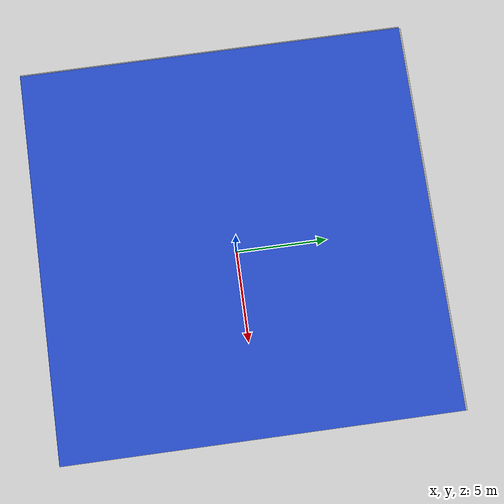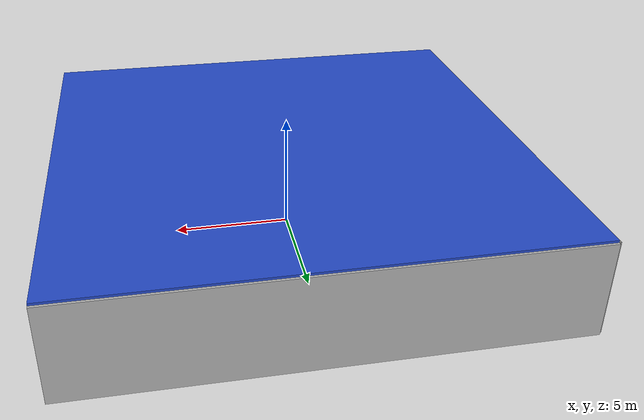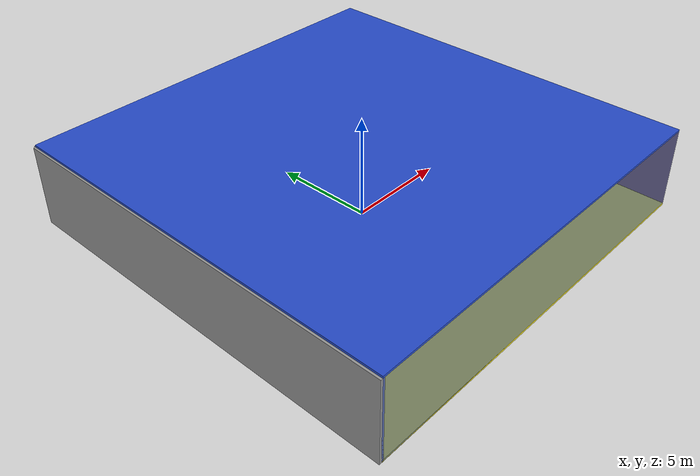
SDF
<sdf version="1.4">
 <world name="default">
  <physics type="ode">
   <max_step_size>0.001</max_step_size>
   <real_time_factor>1</real_time_factor>
   <real_time_update_rate>1000</real_time_update_rate>
   <gravity>0 0 -9.8</gravity>
  </physics>
  <scene><ambient>0.4 0.4 0.4 1</ambient><background>0.7 0.7 0.7 1</background><shadows>1</shadows></scene>
  <model name="Surrounding">
   <static>1</static>
   <link name="Ceiling">
    <collision name="Ceiling_Collision"><geometry><box><size>20 20 0.1</size></box></geometry></collision>
    <visual name="Ceiling_Visual">
     <geometry><box><size>20 20 0.1</size></box></geometry>
     <material>
      <script><uri>file://media/materials/scripts/gazebo.material</uri><name>Gazebo/BlueGlow</name></script>
     </material>
    </visual>
    <pose>0 0 4.05 0 0 0</pose>
   </link>
   <link name="Wall_South">
    <collision name="Wall_South_Collision">
     <geometry><box><size>20 0 4</size></box></geometry>
     <pose>0 0 2 0 -0 0</pose>
    </collision>
    <visual name="Wall_South_Visual">
     <pose>0 0 2 0 -0 0</pose>
     <geometry><box><size>20 0 4</size></box></geometry>
     <material>
      <script><uri>file://media/materials/scripts/gazebo.material</uri><name>Gazebo/BlueTransparent</name></script>
     </material>
    </visual>
    <velocity_decay><linear>0</linear><angular>0</angular></velocity_decay>
    <pose>0 -10 0 0 -0 0</pose>
   </link>
   <link name="Wall_East">
    <collision name="Wall_21_Collision">
     <geometry><box><size>20 0 4</size></box></geometry>
     <pose>0 0 2 0 -0 0</pose>
    </collision>
    <visual name="Wall_21_Visual">
     <pose>0 0 2 0 -0 0</pose>
     <geometry><box><size>20 0 4</size></box></geometry>
     <material>
      <script><uri>file://media/materials/scripts/gazebo.material</uri><name>Gazebo/WoodFloor</name></script>
     </material>
    </visual>
    <velocity_decay><linear>0</linear><angular>0</angular></velocity_decay>
    <pose>10 0 0 0 -0 1.5708</pose>
   </link>
   <link name="Wall_North">
    <collision name="Wall_22_Collision">
     <geometry><box><size>20 0.2 4</size></box></geometry>
     <pose>0 0 2 0 -0 0</pose>
    </collision>
    <visual name="Wall_22_Visual">
     <pose>0 0 2 0 -0 0</pose>
     <geometry><box><size>20 0.2 4</size></box></geometry>
     <material>
      <script><uri>file://media/materials/scripts/gazebo.material</uri><name>Gazebo/JointAnchor</name></script>
     </material>
    </visual>
    <velocity_decay><linear>0</linear><angular>0</angular></velocity_decay>
    <pose>0 10 0 0 -0 0</pose>
   </link>
   <link name="Wall_West">
    <collision name="Wall_23_Collision">
     <geometry><box><size>20 0.2 4</size></box></geometry>
     <pose>0 0 2 0 -0 0</pose>
    </collision>
    <visual name="Wall_23_Visual">
     <pose>0 0 2 0 -0 0</pose>
     <geometry><box><size>20 0.2 4</size></box></geometry>
     <material>
      <script><uri>file://media/materials/scripts/gazebo.material</uri><name>Gazebo/Grey</name></script>
     </material>
    </visual>
    <velocity_decay><linear>0</linear><angular>0</angular></velocity_decay>
    <pose>-10 0 0 0 0 -1.5708</pose>
   </link>
   <link name="Ground_link">
    <collision name="collision">
     <pose>0 0 .05 0 -0 0</pose>
     <geometry><box><size>20 20 0.1</size></box></geometry>
    </collision>
    <visual name="visual">
     <pose>0 0 .05 0 -0 0</pose>
     <geometry><box><size>20 20 0.1</size></box></geometry>
     <material>
      <script><uri>file://media/materials/scripts/gazebo.material</uri><name>Gazebo/YellowGlow</name></script>
     </material>
    </visual>
   </link>
   <static>1</static>
  </model>
  <spherical_coordinates>
   <surface_model>EARTH_WGS84</surface_model>
   <latitude_deg>0</latitude_deg>
   <longitude_deg>0</longitude_deg>
   <elevation>0</elevation>
   <heading_deg>0</heading_deg>
  </spherical_coordinates>
  <light name="lightball_0" type="diffuse">
   <diffuse>0.8 0.8 0.8 1</diffuse>
   <specular>0.2 0.2 0.2 1</specular>
   <attenuation>
    <range>100</range>
    <constant>0.7</constant>
    <linear>0.01</linear>
    <quadratic>0.001</quadratic>
   </attenuation>
   <direction>-0.5 0.1 -0.9</direction>
   <pose>8.72369309007 3.08142289051 2.02253092932 0 0 0</pose>
  </light>
  <light name="lightball_1" type="diffuse">
   <diffuse>0.8 0.8 0.8 1</diffuse>
   <specular>0.2 0.2 0.2 1</specular>
   <attenuation>
    <range>100</range>
    <constant>0.7</constant>
    <linear>0.01</linear>
    <quadratic>0.001</quadratic>
   </attenuation>
   <direction>-0.5 0.1 -0.9</direction>
   <pose>5.03032901825 -5.35215504087 0.914751573473 0 0 0</pose>
  </light>
  <light name="lightball_2" type="diffuse">
   <diffuse>0.8 0.8 0.8 1</diffuse>
   <specular>0.2 0.2 0.2 1</specular>
   <attenuation>
    <range>100</range>
    <constant>0.7</constant>
    <linear>0.01</linear>
    <quadratic>0.001</quadratic>
   </attenuation>
   <direction>-0.5 0.1 -0.9</direction>
   <pose>-1.50112167054 6.88504552811 3.32991957528 0 0 0</pose>
  </light>
  <light name="lightball_3" type="diffuse">
   <diffuse>0.8 0.8 0.8 1</diffuse>
   <specular>0.2 0.2 0.2 1</specular>
   <attenuation>
    <range>100</range>
    <constant>0.7</constant>
    <linear>0.01</linear>
    <quadratic>0.001</quadratic>
   </attenuation>
   <direction>-0.5 0.1 -0.9</direction>
   <pose>-5.35353597742 5.62663970253 2.88979427605 0 0 0</pose>
  </light>
  <light name="lightball_4" type="diffuse">
   <diffuse>0.8 0.8 0.8 1</diffuse>
   <specular>0.2 0.2 0.2 1</specular>
   <attenuation>
    <range>100</range>
    <constant>0.7</constant>
    <linear>0.01</linear>
    <quadratic>0.001</quadratic>
   </attenuation>
   <direction>-0.5 0.1 -0.9</direction>
   <pose>9.81255764447 1.0707070039 0.86300219989 0 0 0</pose>
  </light>
  <light name="lightball_5" type="diffuse">
   <diffuse>0.8 0.8 0.8 1</diffuse>
   <specular>0.2 0.2 0.2 1</specular>
   <attenuation>
    <range>100</range>
    <constant>0.7</constant>
    <linear>0.01</linear>
    <quadratic>0.001</quadratic>
   </attenuation>
   <direction>-0.5 0.1 -0.9</direction>
   <pose>-3.28745380705 7.49020973996 1.00633415938 0 0 0</pose>
  </light>
  <light name="lightball_6" type="diffuse">
   <diffuse>0.8 0.8 0.8 1</diffuse>
   <specular>0.2 0.2 0.2 1</specular>
   <attenuation>
    <range>100</range>
    <constant>0.7</constant>
    <linear>0.01</linear>
    <quadratic>0.001</quadratic>
   </attenuation>
   <direction>-0.5 0.1 -0.9</direction>
   <pose>8.27038695383 2.20719856394 1.30492455004 0 0 0</pose>
  </light>
  <light name="lightball_7" type="diffuse">
   <diffuse>0.8 0.8 0.8 1</diffuse>
   <specular>0.2 0.2 0.2 1</specular>
   <attenuation>
    <range>100</range>
    <constant>0.7</constant>
    <linear>0.01</linear>
    <quadratic>0.001</quadratic>
   </attenuation>
   <direction>-0.5 0.1 -0.9</direction>
   <pose>5.99224963799 -9.21213393482 2.41660927324 0 0 0</pose>
  </light>
  <include><uri>model://table</uri><pose>-4.06909631618 -4.88885228538 0 0 0 3.081885013</pose></include>
  <include>
   <uri>model://construction_cone</uri>
   <pose>-5.27018913034 -0.995233872351 0 0 0 1.60324082079</pose>
  </include>
  <include><uri>model://cabinet</uri><pose>4.58703680522 1.70078942798 0 0 0 1.781727676</pose></include>
 </world>
</sdf>

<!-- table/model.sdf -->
<sdf version="1.5">
  <model name="table">
    <static>true</static>
    <link name="link">
      <collision name="surface">
        <pose>0 0 1.0 0 0 0</pose>
        <geometry>
          <box>
            <size>1.5 0.8 0.03</size>
          </box>
        </geometry>
        <surface>
          <friction>
            <ode>
              <mu>0.6</mu>
              <mu2>0.6</mu2>
            </ode>
          </friction>
        </surface>
      </collision>
      <visual name="visual1">
        <pose>0 0 1.0 0 0 0</pose>
        <geometry>
          <box>
            <size>1.5 0.8 0.03</size>
          </box>
        </geometry>
        <material>
          <script>
            <uri>model://media/materials/scripts/gazebo.material</uri>
            <name>Gazebo/Wood</name>
          </script>
        </material>
      </visual>
      <collision name="front_left_leg">
        <pose>0.68 0.38 0.5 0 0 0</pose>
        <geometry>
          <cylinder>
            <radius>0.02</radius>
            <length>1.0</length>
          </cylinder>
        </geometry>
      </collision>
      <visual name="front_left_leg">
        <pose>0.68 0.38 0.5 0 0 0</pose>
        <geometry>
          <cylinder>
            <radius>0.02</radius>
            <length>1.0</length>
          </cylinder>
        </geometry>
        <material>
          <script>
            <uri>model://media/materials/scripts/gazebo.material</uri>
            <name>Gazebo/Grey</name>
          </script>
        </material>
      </visual>
      <collision name="front_right_leg">
        <pose>0.68 -0.38 0.5 0 0 0</pose>
        <geometry>
          <cylinder>
            <radius>0.02</radius>
            <length>1.0</length>
          </cylinder>
        </geometry>
      </collision>
      <visual name="front_right_leg">
        <pose>0.68 -0.38 0.5 0 0 0</pose>
        <geometry>
          <cylinder>
            <radius>0.02</radius>
            <length>1.0</length>
          </cylinder>
        </geometry>
        <material>
          <script>
            <uri>model://media/materials/scripts/gazebo.material</uri>
            <name>Gazebo/Grey</name>
          </script>
        </material>
      </visual>
      <collision name="back_right_leg">
        <pose>-0.68 -0.38 0.5 0 0 0</pose>
        <geometry>
          <cylinder>
            <radius>0.02</radius>
            <length>1.0</length>
          </cylinder>
        </geometry>
      </collision>
      <visual name="back_right_leg">
        <pose>-0.68 -0.38 0.5 0 0 0</pose>
        <geometry>
          <cylinder>
            <radius>0.02</radius>
            <length>1.0</length>
          </cylinder>
        </geometry>
        <material>
          <script>
            <uri>model://media/materials/scripts/gazebo.material</uri>
            <name>Gazebo/Grey</name>
          </script>
        </material>
      </visual>
      <collision name="back_left_leg">
        <pose>-0.68 0.38 0.5 0 0 0</pose>
        <geometry>
          <cylinder>
            <radius>0.02</radius>
            <length>1.0</length>
          </cylinder>
        </geometry>
      </collision>
      <visual name="back_left_leg">
        <pose>-0.68 0.38 0.5 0 0 0</pose>
        <geometry>
          <cylinder>
            <radius>0.02</radius>
            <length>1.0</length>
          </cylinder>
        </geometry>
        <material>
          <script>
            <uri>model://media/materials/scripts/gazebo.material</uri>
            <name>Gazebo/Grey</name>
          </script>
        </material>
      </visual>
    </link>
  </model>
</sdf>

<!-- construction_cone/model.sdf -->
<sdf version="1.5">
  <model name="Construction Cone">
    <link name="link">
      <collision name="collision">
        <geometry>
          <mesh>
            <scale>10 10 10</scale>
            <uri>file://isr-testbed/construction_cone/meshes/construction_cone.dae</uri>
          </mesh>
        </geometry>
      </collision>
      <visual name="visual">
        <geometry>
          <mesh>
            <scale>10 10 10</scale>
            <uri>file://isr-testbed/construction_cone/meshes/construction_cone.dae</uri>
          </mesh>
        </geometry>
      </visual>
    </link>
  </model>
</sdf>

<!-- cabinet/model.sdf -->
<sdf version="1.5">
  <model name="cabinet">
    <static>true</static>
    <link name="cabinet_bottom_plate">
      <inertial>
        <pose>0 0 -1 0 0 0</pose>
        <inertia>
          <ixx>2.050000</ixx>
          <ixy>0</ixy>
          <ixz>0</ixz>
          <iyy>2.050000</iyy>
          <iyz>0</iyz>
          <izz>2.050000</izz>
        </inertia>
        <mass>25.000000</mass>
      </inertial>
      <collision name="cabinet_bottom_plate_geom">
        <pose>0 0 0.010000 0 0 0</pose>
        <geometry>
          <box>
            <size>0.450000 0.450000 0.020000</size>
          </box>
        </geometry>
      </collision>
      <visual name="cabinet_bottom_plate_geom_visual">
        <pose>0 0 0.010000 0 0 0</pose>
        <geometry>
          <box>
            <size>0.450000 0.450000 0.020000</size>
          </box>
        </geometry>
        <material>
          <script>
            <uri>model://media/materials/scripts/gazebo.material</uri>
            <name>Gazebo/Wood</name>
          </script>
        </material>
      </visual>
      <collision name="cabinet_bottom_plate_geom_cabinet_back_plate">
        <pose>0.235000 0 0.510000 0 0 0</pose>
        <geometry>
          <box>
            <size>0.020000 0.450000 1.020000</size>
          </box>
        </geometry>
      </collision>
      <visual name="cabinet_bottom_plate_geom_cabinet_back_plate_visual">
        <pose>0.235000 0 0.510000 0 0 0</pose>
        <geometry>
          <box>
            <size>0.020000 0.450000 1.020000</size>
          </box>
        </geometry>
        <material>
          <script>
            <uri>model://media/materials/scripts/gazebo.material</uri>
            <name>Gazebo/Wood</name>
          </script>
        </material>
      </visual>
      <collision name="cabinet_bottom_plate_geom_cabinet_left_plate">
        <pose>0 0.235000 0.510000 0 0 0</pose>
        <geometry>
          <box>
            <size>0.450000 0.020000 1.020000</size>
          </box>
        </geometry>
      </collision>
      <visual name="cabinet_bottom_plate_geom_cabinet_left_plate_visual">
        <pose>0 0.235000 0.510000 0 0 0</pose>
        <geometry>
          <box>
            <size>0.450000 0.020000 1.020000</size>
          </box>
        </geometry>
        <material>
          <script>
            <uri>model://media/materials/scripts/gazebo.material</uri>
            <name>Gazebo/Wood</name>
          </script>
        </material>
      </visual>
      <collision name="cabinet_bottom_plate_geom_cabinet_middle_plate">
        <pose>0 0 0.510000 0 0 0</pose>
        <geometry>
          <box>
            <size>0.450000 0.450000 0.020000</size>
          </box>
        </geometry>
      </collision>
      <visual name="cabinet_bottom_plate_geom_cabinet_middle_plate_visual">
        <pose>0 0 0.510000 0 0 0</pose>
        <geometry>
          <box>
            <size>0.450000 0.450000 0.020000</size>
          </box>
        </geometry>
        <material>
          <script>
            <uri>model://media/materials/scripts/gazebo.material</uri>
            <name>Gazebo/Wood</name>
          </script>
        </material>
      </visual>
      <collision name="cabinet_bottom_plate_geom_cabinet_right_plate">
        <pose>0 -0.235000 0.510000 0 0 0</pose>
        <geometry>
          <box>
            <size>0.450000 0.020000 1.020000</size>
          </box>
        </geometry>
      </collision>
      <visual name="cabinet_bottom_plate_geom_cabinet_right_plate_visual">
        <pose>0 -0.235000 0.510000 0 0 0</pose>
        <geometry>
          <box>
            <size>0.450000 0.020000 1.020000</size>
          </box>
        </geometry>
        <material>
          <script>
            <uri>model://media/materials/scripts/gazebo.material</uri>
            <name>Gazebo/Wood</name>
          </script>
        </material>
      </visual>
      <collision name="cabinet_bottom_plate_geom_cabinet_top_plate">
        <pose>0 0 1.010000 0 0 0</pose>
        <geometry>
          <box>
            <size>0.450000 0.450000 0.020000</size>
          </box>
        </geometry>
      </collision>
      <visual name="cabinet_bottom_plate_geom_cabinet_top_plate_visual">
        <pose>0 0 1.010000 0 0 0</pose>
        <geometry>
          <box>
            <size>0.450000 0.450000 0.020000</size>
          </box>
        </geometry>
        <material>
          <script>
            <uri>model://media/materials/scripts/gazebo.material</uri>
            <name>Gazebo/Wood</name>
          </script>
        </material>
      </visual>
    </link>
  </model>
</sdf>
